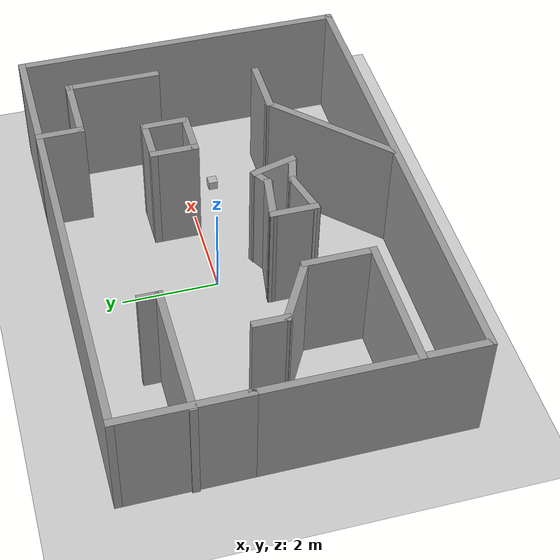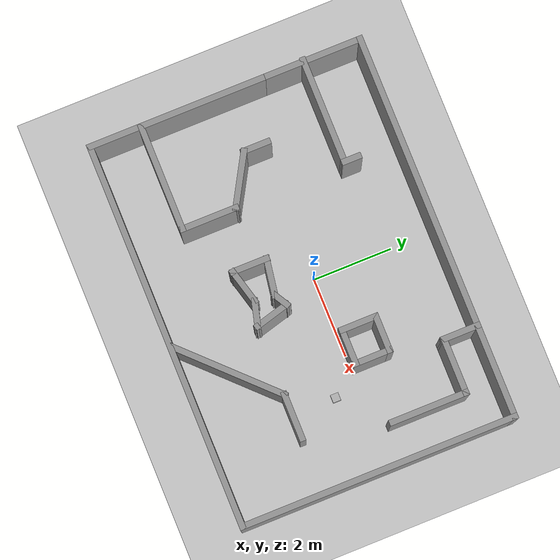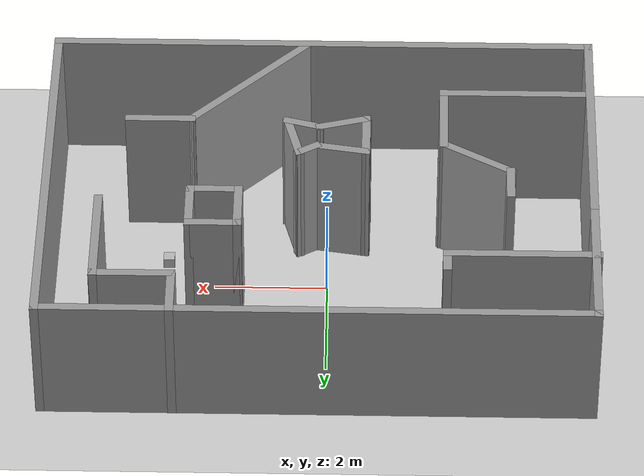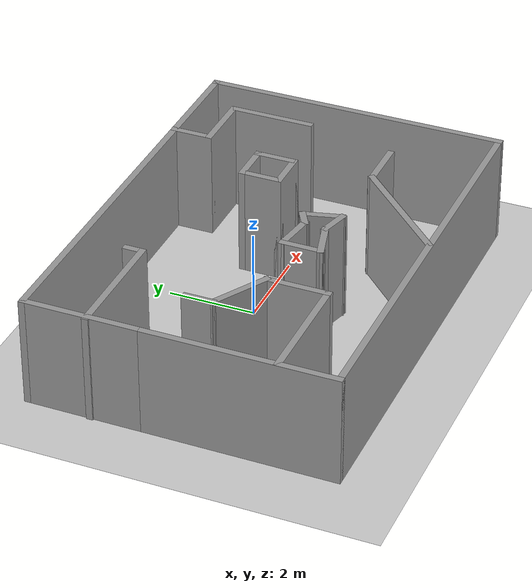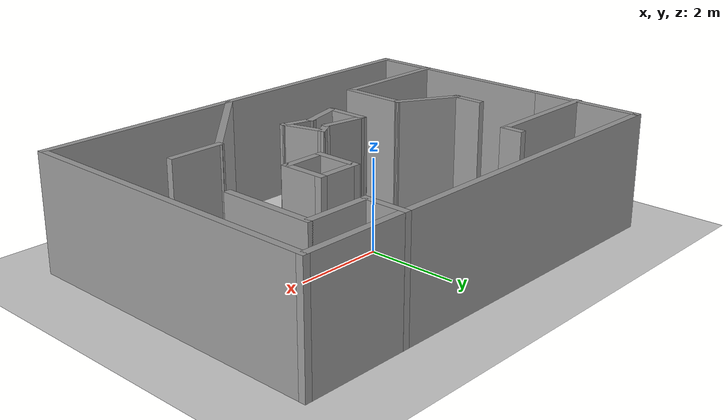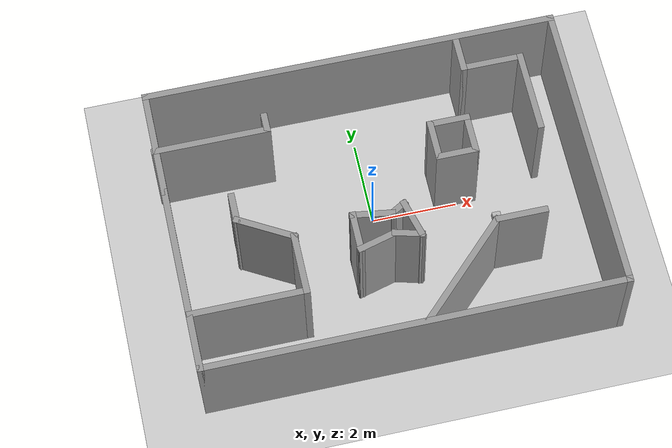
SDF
<sdf version="1.7">
 <world name="default">
  <light name="sun" type="directional">
   <pose>0 0 10 0 -0 0</pose>
   <diffuse>0.8 0.8 0.8 1</diffuse>
   <specular>0.2 0.2 0.2 1</specular>
   <attenuation>
    <range>1000</range>
    <constant>0.9</constant>
    <linear>0.01</linear>
    <quadratic>0.001</quadratic>
   </attenuation>
   <direction>-0.5 0.1 -0.9</direction>
   <spot><inner_angle>0</inner_angle><outer_angle>0</outer_angle><falloff>0</falloff></spot>
  </light>
  <gravity>0 0 -9.8</gravity>
  <magnetic_field>6e-06 2.3e-05 -4.2e-05</magnetic_field>
  <atmosphere type="adiabatic"/>
  <physics type="ode">
   <max_step_size>0.001</max_step_size>
   <real_time_factor>1</real_time_factor>
   <real_time_update_rate>1000</real_time_update_rate>
  </physics>
  <scene><ambient>0.4 0.4 0.4 1</ambient><background>0.7 0.7 0.7 1</background><shadows>1</shadows></scene>
  <model name="static_box_1">
   <static>true</static>
   <link name="box_link">
    <pose>2.8472 -0.59398 0.1 0 0 0</pose>
    <visual name="visual"><geometry><box><size>.2 .2 .2</size></box></geometry></visual>
    <collision name="collision"><geometry><box><size>0.2 0.2 0.2</size></box></geometry></collision>
   </link>
  </model>
  <spherical_coordinates>
   <surface_model>EARTH_WGS84</surface_model>
   <latitude_deg>0</latitude_deg>
   <longitude_deg>0</longitude_deg>
   <elevation>0</elevation>
   <heading_deg>0</heading_deg>
  </spherical_coordinates>
  <model name="Test_Field_2">
   <pose>0.12044 -0.37908 0 0 -0 0</pose>
   <link name="Wall_43">
    <collision name="Wall_43_Collision">
     <geometry><box><size>4.5 0.15 2.5</size></box></geometry>
     <pose>0 0 1.25 0 -0 0</pose>
    </collision>
    <visual name="Wall_43_Visual">
     <pose>0 0 1.25 0 -0 0</pose>
     <geometry><box><size>4.5 0.15 2.5</size></box></geometry>
     <material>
      <script><uri>file://media/materials/scripts/gazebo.material</uri><name>Gazebo/Grey</name></script>
      <ambient>1 1 1 1</ambient>
     </material>
     <meta><layer>0</layer></meta>
    </visual>
    <pose>-4.78155 -1.25047 0 0 -0 -1.5708</pose>
   </link>
   <link name="Wall_44">
    <collision name="Wall_44_Collision">
     <geometry><box><size>9.75 0.15 2.5</size></box></geometry>
     <pose>0 0 1.25 0 -0 0</pose>
    </collision>
    <visual name="Wall_44_Visual">
     <pose>0 0 1.25 0 -0 0</pose>
     <geometry><box><size>9.75 0.15 2.5</size></box></geometry>
     <material>
      <script><uri>file://media/materials/scripts/gazebo.material</uri><name>Gazebo/Grey</name></script>
      <ambient>1 1 1 1</ambient>
     </material>
     <meta><layer>0</layer></meta>
    </visual>
    <pose>0.018447 -3.42547 0 0 -0 0</pose>
   </link>
   <link name="Wall_45">
    <collision name="Wall_45_Collision">
     <geometry><box><size>7 0.15 2.5</size></box></geometry>
     <pose>0 0 1.25 0 -0 0</pose>
    </collision>
    <visual name="Wall_45_Visual">
     <pose>0 0 1.25 0 -0 0</pose>
     <geometry><box><size>7 0.15 2.5</size></box></geometry>
     <material>
      <script><uri>file://media/materials/scripts/gazebo.material</uri><name>Gazebo/Grey</name></script>
      <ambient>1 1 1 1</ambient>
     </material>
     <meta><layer>0</layer></meta>
    </visual>
    <pose>4.81845 -0.00047 0 0 -0 1.5708</pose>
   </link>
   <link name="Wall_46">
    <collision name="Wall_46_Collision">
     <geometry><box><size>9.75 0.15 2.5</size></box></geometry>
     <pose>0 0 1.25 0 -0 0</pose>
    </collision>
    <visual name="Wall_46_Visual">
     <pose>0 0 1.25 0 -0 0</pose>
     <geometry><box><size>9.75 0.15 2.5</size></box></geometry>
     <material>
      <script><uri>file://media/materials/scripts/gazebo.material</uri><name>Gazebo/Grey</name></script>
      <ambient>1 1 1 1</ambient>
     </material>
     <meta><layer>0</layer></meta>
    </visual>
    <pose>0.018447 3.42453 0 0 -0 3.14159</pose>
   </link>
   <link name="Wall_47">
    <collision name="Wall_47_Collision">
     <geometry><box><size>2.65 0.15 2.5</size></box></geometry>
     <pose>0 0 1.25 0 -0 0</pose>
    </collision>
    <visual name="Wall_47_Visual">
     <pose>0 0 1.25 0 -0 0</pose>
     <geometry><box><size>2.65 0.15 2.5</size></box></geometry>
     <material>
      <script><uri>file://media/materials/scripts/gazebo.material</uri><name>Gazebo/Grey</name></script>
      <ambient>1 1 1 1</ambient>
     </material>
     <meta><layer>0</layer></meta>
    </visual>
    <pose>-4.78155 2.17453 0 0 -0 -1.5708</pose>
   </link>
   <link name="Wall_50">
    <collision name="Wall_50_Collision">
     <geometry><box><size>2.75 0.15 2.5</size></box></geometry>
     <pose>0 0 1.25 0 -0 0</pose>
    </collision>
    <visual name="Wall_50_Visual">
     <pose>0 0 1.25 0 -0 0</pose>
     <geometry><box><size>2.75 0.15 2.5</size></box></geometry>
     <material>
      <script><uri>file://media/materials/scripts/gazebo.material</uri><name>Gazebo/Grey</name></script>
      <ambient>1 1 1 1</ambient>
     </material>
     <meta><layer>0</layer></meta>
    </visual>
    <pose>-3.51845 1.98906 0 0 -0 0</pose>
   </link>
   <link name="Wall_51">
    <collision name="Wall_51_Collision">
     <geometry><box><size>0.5 0.15 2.5</size></box></geometry>
     <pose>0 0 1.25 0 -0 0</pose>
    </collision>
    <visual name="Wall_51_Visual">
     <pose>0 0 1.25 0 -0 0</pose>
     <geometry><box><size>0.5 0.15 2.5</size></box></geometry>
     <material>
      <script><uri>file://media/materials/scripts/gazebo.material</uri><name>Gazebo/Grey</name></script>
      <ambient>1 1 1 1</ambient>
     </material>
     <meta><layer>0</layer></meta>
    </visual>
    <pose>-2.21845 2.16406 0 0 -0 1.5708</pose>
   </link>
   <link name="Wall_53">
    <collision name="Wall_53_Collision">
     <geometry><box><size>2.75 0.15 2.5</size></box></geometry>
     <pose>0 0 1.25 0 -0 0</pose>
    </collision>
    <visual name="Wall_53_Visual">
     <pose>0 0 1.25 0 -0 0</pose>
     <geometry><box><size>2.75 0.15 2.5</size></box></geometry>
     <material>
      <script><uri>file://media/materials/scripts/gazebo.material</uri><name>Gazebo/Grey</name></script>
      <ambient>1 1 1 1</ambient>
     </material>
     <meta><layer>0</layer></meta>
    </visual>
    <pose>-3.46525 -2.13397 0 0 -0 0</pose>
   </link>
   <link name="Wall_54">
    <collision name="Wall_54_Collision">
     <geometry><box><size>1.5 0.15 2.5</size></box></geometry>
     <pose>0 0 1.25 0 -0 0</pose>
    </collision>
    <visual name="Wall_54_Visual">
     <pose>0 0 1.25 0 -0 0</pose>
     <geometry><box><size>1.5 0.15 2.5</size></box></geometry>
     <material>
      <script><uri>file://media/materials/scripts/gazebo.material</uri><name>Gazebo/Grey</name></script>
      <ambient>1 1 1 1</ambient>
     </material>
     <meta><layer>0</layer></meta>
    </visual>
    <pose>-2.16525 -1.45897 0 0 -0 1.5708</pose>
   </link>
   <link name="Wall_55">
    <collision name="Wall_55_Collision">
     <geometry><box><size>1.5 0.15 2.5</size></box></geometry>
     <pose>0 0 1.25 0 -0 0</pose>
    </collision>
    <visual name="Wall_55_Visual">
     <pose>0 0 1.25 0 -0 0</pose>
     <geometry><box><size>1.5 0.15 2.5</size></box></geometry>
     <material>
      <script><uri>file://media/materials/scripts/gazebo.material</uri><name>Gazebo/Grey</name></script>
      <ambient>1 1 1 1</ambient>
     </material>
     <meta><layer>0</layer></meta>
    </visual>
    <pose>-2.74981 -0.446471 0 0 -0 2.61799</pose>
   </link>
   <link name="Wall_56">
    <collision name="Wall_56_Collision">
     <geometry><box><size>0.75 0.15 2.5</size></box></geometry>
     <pose>0 0 1.25 0 -0 0</pose>
    </collision>
    <visual name="Wall_56_Visual">
     <pose>0 0 1.25 0 -0 0</pose>
     <geometry><box><size>0.75 0.15 2.5</size></box></geometry>
     <material>
      <script><uri>file://media/materials/scripts/gazebo.material</uri><name>Gazebo/Grey</name></script>
      <ambient>1 1 1 1</ambient>
     </material>
     <meta><layer>0</layer></meta>
    </visual>
    <pose>-3.33438 0.191029 0 0 -0 1.5708</pose>
   </link>
   <link name="Wall_58">
    <collision name="Wall_58_Collision">
     <geometry><box><size>1 0.15 2.5</size></box></geometry>
     <pose>0 0 1.25 0 -0 0</pose>
    </collision>
    <visual name="Wall_58_Visual">
     <pose>0 0 1.25 0 -0 0</pose>
     <geometry><box><size>1 0.15 2.5</size></box></geometry>
     <material>
      <script><uri>file://media/materials/scripts/gazebo.material</uri><name>Gazebo/Grey</name></script>
      <ambient>1 1 1 1</ambient>
     </material>
     <meta><layer>0</layer></meta>
    </visual>
    <pose>1.4326 0.872454 0 0 -0 -1.5708</pose>
   </link>
   <link name="Wall_59">
    <collision name="Wall_59_Collision">
     <geometry><box><size>1 0.15 2.5</size></box></geometry>
     <pose>0 0 1.25 0 -0 0</pose>
    </collision>
    <visual name="Wall_59_Visual">
     <pose>0 0 1.25 0 -0 0</pose>
     <geometry><box><size>1 0.15 2.5</size></box></geometry>
     <material>
      <script><uri>file://media/materials/scripts/gazebo.material</uri><name>Gazebo/Grey</name></script>
      <ambient>1 1 1 1</ambient>
     </material>
     <meta><layer>0</layer></meta>
    </visual>
    <pose>1.8576 0.447454 0 0 -0 0</pose>
   </link>
   <link name="Wall_60">
    <collision name="Wall_60_Collision">
     <geometry><box><size>1 0.15 2.5</size></box></geometry>
     <pose>0 0 1.25 0 -0 0</pose>
    </collision>
    <visual name="Wall_60_Visual">
     <pose>0 0 1.25 0 -0 0</pose>
     <geometry><box><size>1 0.15 2.5</size></box></geometry>
     <material>
      <script><uri>file://media/materials/scripts/gazebo.material</uri><name>Gazebo/Grey</name></script>
      <ambient>1 1 1 1</ambient>
     </material>
     <meta><layer>0</layer></meta>
    </visual>
    <pose>2.2826 0.872454 0 0 -0 1.5708</pose>
   </link>
   <link name="Wall_61">
    <collision name="Wall_61_Collision">
     <geometry><box><size>1 0.15 2.5</size></box></geometry>
     <pose>0 0 1.25 0 -0 0</pose>
    </collision>
    <visual name="Wall_61_Visual">
     <pose>0 0 1.25 0 -0 0</pose>
     <geometry><box><size>1 0.15 2.5</size></box></geometry>
     <material>
      <script><uri>file://media/materials/scripts/gazebo.material</uri><name>Gazebo/Grey</name></script>
      <ambient>1 1 1 1</ambient>
     </material>
     <meta><layer>0</layer></meta>
    </visual>
    <pose>1.8576 1.29745 0 0 -0 3.14159</pose>
   </link>
   <link name="Wall_63">
    <collision name="Wall_63_Collision">
     <geometry><box><size>3 0.15 2.5</size></box></geometry>
     <pose>0 0 1.25 0 -0 0</pose>
    </collision>
    <visual name="Wall_63_Visual">
     <pose>0 0 1.25 0 -0 0</pose>
     <geometry><box><size>3 0.15 2.5</size></box></geometry>
     <material>
      <script><uri>file://media/materials/scripts/gazebo.material</uri><name>Gazebo/Grey</name></script>
      <ambient>1 1 1 1</ambient>
     </material>
     <meta><layer>0</layer></meta>
    </visual>
    <pose>1.32302 -2.37655 0 0 -0 0.785398</pose>
   </link>
   <link name="Wall_64">
    <collision name="Wall_64_Collision">
     <geometry><box><size>1.25 0.15 2.5</size></box></geometry>
     <pose>0 0 1.25 0 -0 0</pose>
    </collision>
    <visual name="Wall_64_Visual">
     <pose>0 0 1.25 0 -0 0</pose>
     <geometry><box><size>1.25 0.15 2.5</size></box></geometry>
     <material>
      <script><uri>file://media/materials/scripts/gazebo.material</uri><name>Gazebo/Grey</name></script>
      <ambient>1 1 1 1</ambient>
     </material>
     <meta><layer>0</layer></meta>
    </visual>
    <pose>2.88065 -1.36893 0 0 -0 0</pose>
   </link>
   <link name="Wall_66">
    <collision name="Wall_66_Collision">
     <geometry><box><size>1 0.15 2.5</size></box></geometry>
     <pose>0 0 1.25 0 -0 0</pose>
    </collision>
    <visual name="Wall_66_Visual">
     <pose>0 0 1.25 0 -0 0</pose>
     <geometry><box><size>1 0.15 2.5</size></box></geometry>
     <material>
      <script><uri>file://media/materials/scripts/gazebo.material</uri><name>Gazebo/Grey</name></script>
      <ambient>1 1 1 1</ambient>
     </material>
     <meta><layer>0</layer></meta>
    </visual>
    <pose>2.52321 3.00047 0 0 -0 -1.5708</pose>
   </link>
   <link name="Wall_67">
    <collision name="Wall_67_Collision">
     <geometry><box><size>1.5 0.15 2.5</size></box></geometry>
     <pose>0 0 1.25 0 -0 0</pose>
    </collision>
    <visual name="Wall_67_Visual">
     <pose>0 0 1.25 0 -0 0</pose>
     <geometry><box><size>1.5 0.15 2.5</size></box></geometry>
     <material>
      <script><uri>file://media/materials/scripts/gazebo.material</uri><name>Gazebo/Grey</name></script>
      <ambient>1 1 1 1</ambient>
     </material>
     <meta><layer>0</layer></meta>
    </visual>
    <pose>3.19821 2.57547 0 0 -0 0</pose>
   </link>
   <link name="Wall_68">
    <collision name="Wall_68_Collision">
     <geometry><box><size>2 0.15 2.5</size></box></geometry>
     <pose>0 0 1.25 0 -0 0</pose>
    </collision>
    <visual name="Wall_68_Visual">
     <pose>0 0 1.25 0 -0 0</pose>
     <geometry><box><size>2 0.15 2.5</size></box></geometry>
     <material>
      <script><uri>file://media/materials/scripts/gazebo.material</uri><name>Gazebo/Grey</name></script>
      <ambient>1 1 1 1</ambient>
     </material>
     <meta><layer>0</layer></meta>
    </visual>
    <pose>3.87321 1.65047 0 0 -0 -1.5708</pose>
   </link>
   <link name="Wall_70">
    <collision name="Wall_70_Collision">
     <geometry><box><size>1 0.15 2.5</size></box></geometry>
     <pose>0 0 1.25 0 -0 0</pose>
    </collision>
    <visual name="Wall_70_Visual">
     <pose>0 0 1.25 0 -0 0</pose>
     <geometry><box><size>1 0.15 2.5</size></box></geometry>
     <material>
      <script><uri>file://media/materials/scripts/gazebo.material</uri><name>Gazebo/Grey</name></script>
      <ambient>1 1 1 1</ambient>
     </material>
     <meta><layer>0</layer></meta>
    </visual>
    <pose>-0.786252 -0.989503 0 0 -0 -1.5708</pose>
   </link>
   <link name="Wall_71">
    <collision name="Wall_71_Collision">
     <geometry><box><size>1 0.15 2.5</size></box></geometry>
     <pose>0 0 1.25 0 -0 0</pose>
    </collision>
    <visual name="Wall_71_Visual">
     <pose>0 0 1.25 0 -0 0</pose>
     <geometry><box><size>1 0.15 2.5</size></box></geometry>
     <material>
      <script><uri>file://media/materials/scripts/gazebo.material</uri><name>Gazebo/Grey</name></script>
      <ambient>1 1 1 1</ambient>
     </material>
     <meta><layer>0</layer></meta>
    </visual>
    <pose>-0.375733 -1.30451 0 0 -0 0.261799</pose>
   </link>
   <link name="Wall_72">
    <collision name="Wall_72_Collision">
     <geometry><box><size>0.75 0.15 2.5</size></box></geometry>
     <pose>0 0 1.25 0 -0 0</pose>
    </collision>
    <visual name="Wall_72_Visual">
     <pose>0 0 1.25 0 -0 0</pose>
     <geometry><box><size>0.75 0.15 2.5</size></box></geometry>
     <material>
      <script><uri>file://media/materials/scripts/gazebo.material</uri><name>Gazebo/Grey</name></script>
      <ambient>1 1 1 1</ambient>
     </material>
     <meta><layer>0</layer></meta>
    </visual>
    <pose>0.324563 -1.27215 0 0 -0 -0.261799</pose>
   </link>
   <link name="Wall_73">
    <collision name="Wall_73_Collision">
     <geometry><box><size>1 0.15 2.5</size></box></geometry>
     <pose>0 0 1.25 0 -0 0</pose>
    </collision>
    <visual name="Wall_73_Visual">
     <pose>0 0 1.25 0 -0 0</pose>
     <geometry><box><size>1 0.15 2.5</size></box></geometry>
     <material>
      <script><uri>file://media/materials/scripts/gazebo.material</uri><name>Gazebo/Grey</name></script>
      <ambient>1 1 1 1</ambient>
     </material>
     <meta><layer>0</layer></meta>
    </visual>
    <pose>0.504343 -0.93928 0 0 -0 1.8326</pose>
   </link>
   <link name="Wall_74">
    <collision name="Wall_74_Collision">
     <geometry><box><size>0.5 0.15 2.5</size></box></geometry>
     <pose>0 0 1.25 0 -0 0</pose>
    </collision>
    <visual name="Wall_74_Visual">
     <pose>0 0 1.25 0 -0 0</pose>
     <geometry><box><size>0.5 0.15 2.5</size></box></geometry>
     <material>
      <script><uri>file://media/materials/scripts/gazebo.material</uri><name>Gazebo/Grey</name></script>
      <ambient>1 1 1 1</ambient>
     </material>
     <meta><layer>0</layer></meta>
    </visual>
    <pose>0.24279 -0.616261 0 0 -0 -2.61799</pose>
   </link>
   <link name="Wall_75">
    <collision name="Wall_75_Collision">
     <geometry><box><size>1.03847 0.15 2.5</size></box></geometry>
     <pose>0 0 1.25 0 -0 0</pose>
    </collision>
    <visual name="Wall_75_Visual">
     <pose>0 0 1.25 0 -0 0</pose>
     <geometry><box><size>1.03847 0.15 2.5</size></box></geometry>
     <material>
      <script><uri>file://media/materials/scripts/gazebo.material</uri><name>Gazebo/Grey</name></script>
      <ambient>1 1 1 1</ambient>
     </material>
     <meta><layer>0</layer></meta>
    </visual>
    <pose>-0.347508 -0.634132 0 0 -0 2.9842</pose>
   </link>
   <static>1</static>
  </model>
  <model name="ground_plane">
   <static>1</static>
   <link name="link">
    <collision name="collision">
     <geometry><plane><normal>0 0 1</normal><size>100 100</size></plane></geometry>
     <surface>
      <contact><collide_bitmask>65535</collide_bitmask></contact>
      <friction><ode><mu>100</mu><mu2>50</mu2></ode></friction>
     </surface>
    </collision>
    <visual name="visual">
     <cast_shadows>0</cast_shadows>
     <geometry><plane><normal>0 0 1</normal><size>100 100</size></plane></geometry>
     <material>
      <script><uri>file://media/materials/scripts/gazebo.material</uri><name>Gazebo/Grey</name></script>
     </material>
    </visual>
   </link>
  </model>
 </world>
</sdf>
